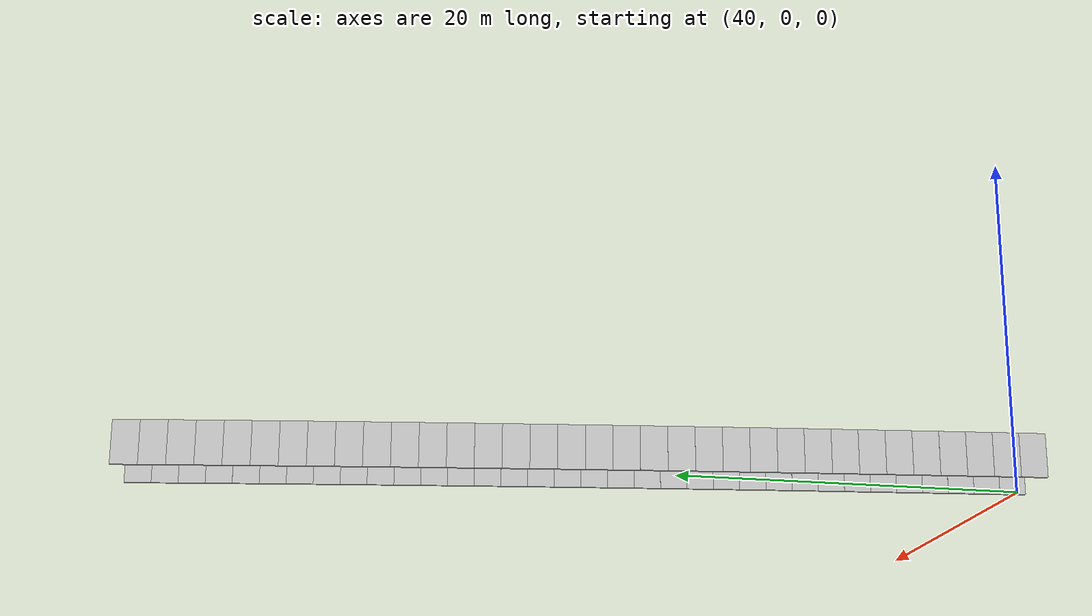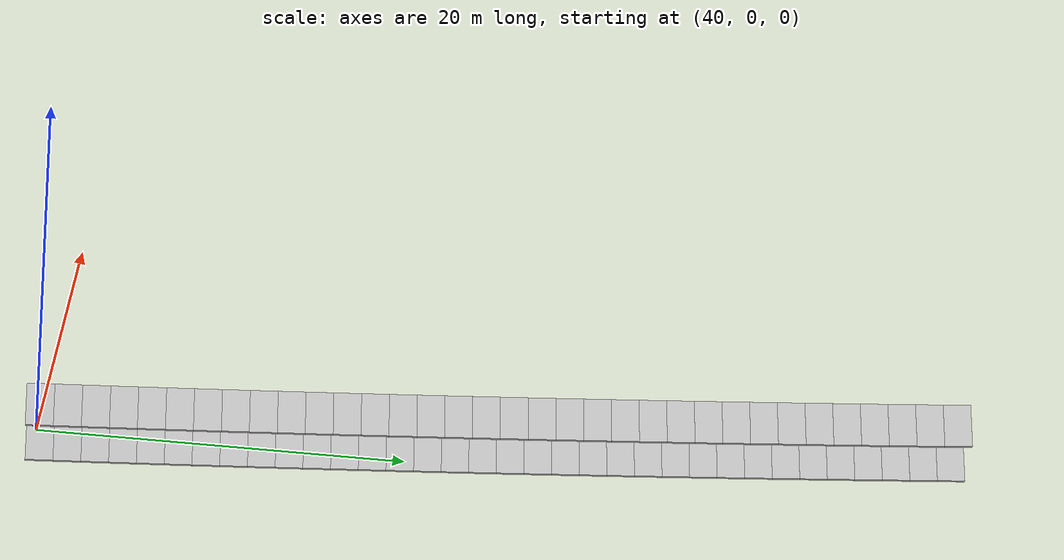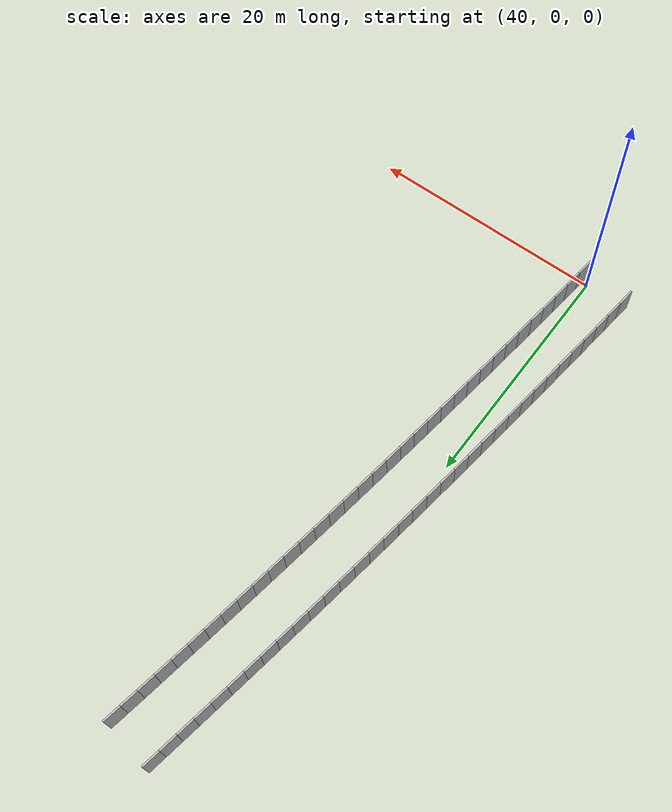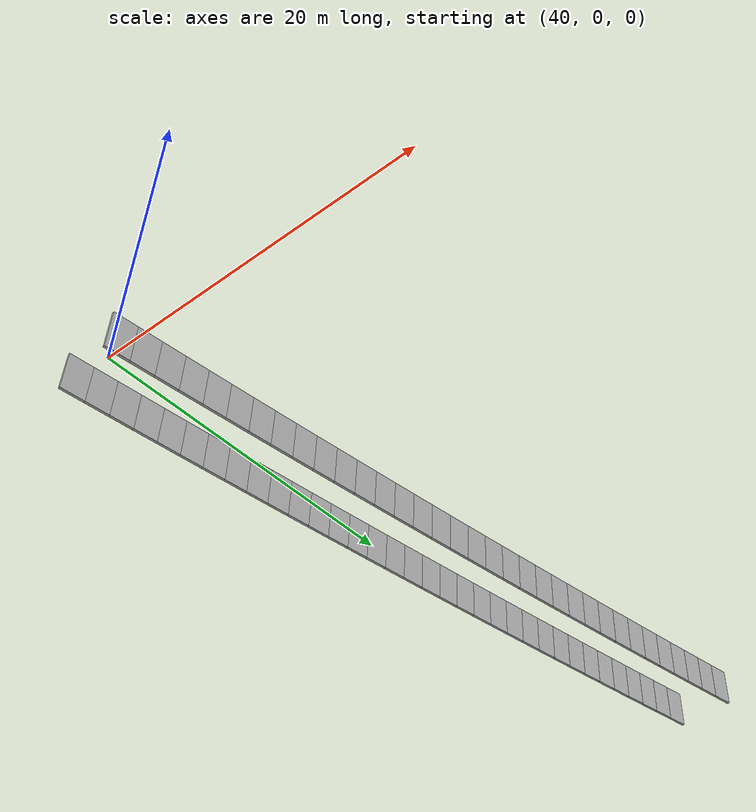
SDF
<?xml version="1.0" ?>
<sdf version="1.6">
  <model name="sps_0228">
    <pose frame="">0 0 0 0 -0 0</pose>
    <static>1</static>
    <self_collide>0</self_collide>
    <allow_auto_disable>0</allow_auto_disable>
    <link name="Wall5103">
      <kinematic>0</kinematic>
      <gravity>1</gravity>
      <self_collide>0</self_collide>
      <collision name="collision">
        <geometry>
          <box>
            <size>1.49657 0.15 2.5</size>
          </box>
        </geometry>
        <pose frame="">0 0 0 0 -0 0</pose>
      </collision>
      <visual name="visual">
        <geometry>
          <box>
            <size>1.49657 0.15 2.5</size>
          </box>
        </geometry>
        <pose frame="">0 0 0 0 -0 0</pose>
        <cast_shadows>1</cast_shadows>
        <transparency>0.0</transparency>
      </visual>
      <pose frame="">47.4253 48.9819 1.25 0 0 -1.73698</pose>
    </link>
    <link name="Wall5104">
      <kinematic>0</kinematic>
      <gravity>1</gravity>
      <self_collide>0</self_collide>
      <collision name="collision">
        <geometry>
          <box>
            <size>1.49643 0.15 2.5</size>
          </box>
        </geometry>
        <pose frame="">0 0 0 0 -0 0</pose>
      </collision>
      <visual name="visual">
        <geometry>
          <box>
            <size>1.49643 0.15 2.5</size>
          </box>
        </geometry>
        <pose frame="">0 0 0 0 -0 0</pose>
        <cast_shadows>1</cast_shadows>
        <transparency>0.0</transparency>
      </visual>
      <pose frame="">47.1789 47.5058 1.25 0 0 -1.73542</pose>
    </link>
    <link name="Wall5105">
      <kinematic>0</kinematic>
      <gravity>1</gravity>
      <self_collide>0</self_collide>
      <collision name="collision">
        <geometry>
          <box>
            <size>1.49645 0.15 2.5</size>
          </box>
        </geometry>
        <pose frame="">0 0 0 0 -0 0</pose>
      </collision>
      <visual name="visual">
        <geometry>
          <box>
            <size>1.49645 0.15 2.5</size>
          </box>
        </geometry>
        <pose frame="">0 0 0 0 -0 0</pose>
        <cast_shadows>1</cast_shadows>
        <transparency>0.0</transparency>
      </visual>
      <pose frame="">46.9348 46.0294 1.25 0 0 -1.73377</pose>
    </link>
    <link name="Wall5106">
      <kinematic>0</kinematic>
      <gravity>1</gravity>
      <self_collide>0</self_collide>
      <collision name="collision">
        <geometry>
          <box>
            <size>1.49664 0.15 2.5</size>
          </box>
        </geometry>
        <pose frame="">0 0 0 0 -0 0</pose>
      </collision>
      <visual name="visual">
        <geometry>
          <box>
            <size>1.49664 0.15 2.5</size>
          </box>
        </geometry>
        <pose frame="">0 0 0 0 -0 0</pose>
        <cast_shadows>1</cast_shadows>
        <transparency>0.0</transparency>
      </visual>
      <pose frame="">46.6931 44.5525 1.25 0 0 -1.73226</pose>
    </link>
    <link name="Wall5107">
      <kinematic>0</kinematic>
      <gravity>1</gravity>
      <self_collide>0</self_collide>
      <collision name="collision">
        <geometry>
          <box>
            <size>1.49649 0.15 2.5</size>
          </box>
        </geometry>
        <pose frame="">0 0 0 0 -0 0</pose>
      </collision>
      <visual name="visual">
        <geometry>
          <box>
            <size>1.49649 0.15 2.5</size>
          </box>
        </geometry>
        <pose frame="">0 0 0 0 -0 0</pose>
        <cast_shadows>1</cast_shadows>
        <transparency>0.0</transparency>
      </visual>
      <pose frame="">46.4538 43.0752 1.25 0 0 -1.73062</pose>
    </link>
    <link name="Wall5108">
      <kinematic>0</kinematic>
      <gravity>1</gravity>
      <self_collide>0</self_collide>
      <collision name="collision">
        <geometry>
          <box>
            <size>1.49651 0.15 2.5</size>
          </box>
        </geometry>
        <pose frame="">0 0 0 0 -0 0</pose>
      </collision>
      <visual name="visual">
        <geometry>
          <box>
            <size>1.49651 0.15 2.5</size>
          </box>
        </geometry>
        <pose frame="">0 0 0 0 -0 0</pose>
        <cast_shadows>1</cast_shadows>
        <transparency>0.0</transparency>
      </visual>
      <pose frame="">46.2167 41.5976 1.25 0 0 -1.72917</pose>
    </link>
    <link name="Wall5109">
      <kinematic>0</kinematic>
      <gravity>1</gravity>
      <self_collide>0</self_collide>
      <collision name="collision">
        <geometry>
          <box>
            <size>1.49652 0.15 2.5</size>
          </box>
        </geometry>
        <pose frame="">0 0 0 0 -0 0</pose>
      </collision>
      <visual name="visual">
        <geometry>
          <box>
            <size>1.49652 0.15 2.5</size>
          </box>
        </geometry>
        <pose frame="">0 0 0 0 -0 0</pose>
        <cast_shadows>1</cast_shadows>
        <transparency>0.0</transparency>
      </visual>
      <pose frame="">45.982 40.1196 1.25 0 0 -1.7274</pose>
    </link>
    <link name="Wall5110">
      <kinematic>0</kinematic>
      <gravity>1</gravity>
      <self_collide>0</self_collide>
      <collision name="collision">
        <geometry>
          <box>
            <size>1.4966 0.15 2.5</size>
          </box>
        </geometry>
        <pose frame="">0 0 0 0 -0 0</pose>
      </collision>
      <visual name="visual">
        <geometry>
          <box>
            <size>1.4966 0.15 2.5</size>
          </box>
        </geometry>
        <pose frame="">0 0 0 0 -0 0</pose>
        <cast_shadows>1</cast_shadows>
        <transparency>0.0</transparency>
      </visual>
      <pose frame="">45.7497 38.6412 1.25 0 0 -1.7259</pose>
    </link>
    <link name="Wall5111">
      <kinematic>0</kinematic>
      <gravity>1</gravity>
      <self_collide>0</self_collide>
      <collision name="collision">
        <geometry>
          <box>
            <size>1.49639 0.15 2.5</size>
          </box>
        </geometry>
        <pose frame="">0 0 0 0 -0 0</pose>
      </collision>
      <visual name="visual">
        <geometry>
          <box>
            <size>1.49639 0.15 2.5</size>
          </box>
        </geometry>
        <pose frame="">0 0 0 0 -0 0</pose>
        <cast_shadows>1</cast_shadows>
        <transparency>0.0</transparency>
      </visual>
      <pose frame="">45.5196 37.1625 1.25 0 0 -1.72444</pose>
    </link>
    <link name="Wall5112">
      <kinematic>0</kinematic>
      <gravity>1</gravity>
      <self_collide>0</self_collide>
      <collision name="collision">
        <geometry>
          <box>
            <size>1.49665 0.15 2.5</size>
          </box>
        </geometry>
        <pose frame="">0 0 0 0 -0 0</pose>
      </collision>
      <visual name="visual">
        <geometry>
          <box>
            <size>1.49665 0.15 2.5</size>
          </box>
        </geometry>
        <pose frame="">0 0 0 0 -0 0</pose>
        <cast_shadows>1</cast_shadows>
        <transparency>0.0</transparency>
      </visual>
      <pose frame="">45.2919 35.6834 1.25 0 0 -1.72264</pose>
    </link>
    <link name="Wall5113">
      <kinematic>0</kinematic>
      <gravity>1</gravity>
      <self_collide>0</self_collide>
      <collision name="collision">
        <geometry>
          <box>
            <size>1.49651 0.15 2.5</size>
          </box>
        </geometry>
        <pose frame="">0 0 0 0 -0 0</pose>
      </collision>
      <visual name="visual">
        <geometry>
          <box>
            <size>1.49651 0.15 2.5</size>
          </box>
        </geometry>
        <pose frame="">0 0 0 0 -0 0</pose>
        <cast_shadows>1</cast_shadows>
        <transparency>0.0</transparency>
      </visual>
      <pose frame="">45.0666 34.2039 1.25 0 0 -1.72121</pose>
    </link>
    <link name="Wall5114">
      <kinematic>0</kinematic>
      <gravity>1</gravity>
      <self_collide>0</self_collide>
      <collision name="collision">
        <geometry>
          <box>
            <size>1.49651 0.15 2.5</size>
          </box>
        </geometry>
        <pose frame="">0 0 0 0 -0 0</pose>
      </collision>
      <visual name="visual">
        <geometry>
          <box>
            <size>1.49651 0.15 2.5</size>
          </box>
        </geometry>
        <pose frame="">0 0 0 0 -0 0</pose>
        <cast_shadows>1</cast_shadows>
        <transparency>0.0</transparency>
      </visual>
      <pose frame="">44.8435 32.7241 1.25 0 0 -1.71956</pose>
    </link>
    <link name="Wall5115">
      <kinematic>0</kinematic>
      <gravity>1</gravity>
      <self_collide>0</self_collide>
      <collision name="collision">
        <geometry>
          <box>
            <size>1.49657 0.15 2.5</size>
          </box>
        </geometry>
        <pose frame="">0 0 0 0 -0 0</pose>
      </collision>
      <visual name="visual">
        <geometry>
          <box>
            <size>1.49657 0.15 2.5</size>
          </box>
        </geometry>
        <pose frame="">0 0 0 0 -0 0</pose>
        <cast_shadows>1</cast_shadows>
        <transparency>0.0</transparency>
      </visual>
      <pose frame="">44.6229 31.2439 1.25 0 0 -1.7179</pose>
    </link>
    <link name="Wall5116">
      <kinematic>0</kinematic>
      <gravity>1</gravity>
      <self_collide>0</self_collide>
      <collision name="collision">
        <geometry>
          <box>
            <size>1.49644 0.15 2.5</size>
          </box>
        </geometry>
        <pose frame="">0 0 0 0 -0 0</pose>
      </collision>
      <visual name="visual">
        <geometry>
          <box>
            <size>1.49644 0.15 2.5</size>
          </box>
        </geometry>
        <pose frame="">0 0 0 0 -0 0</pose>
        <cast_shadows>1</cast_shadows>
        <transparency>0.0</transparency>
      </visual>
      <pose frame="">44.4047 29.7634 1.25 0 0 -1.71647</pose>
    </link>
    <link name="Wall5117">
      <kinematic>0</kinematic>
      <gravity>1</gravity>
      <self_collide>0</self_collide>
      <collision name="collision">
        <geometry>
          <box>
            <size>1.49649 0.15 2.5</size>
          </box>
        </geometry>
        <pose frame="">0 0 0 0 -0 0</pose>
      </collision>
      <visual name="visual">
        <geometry>
          <box>
            <size>1.49649 0.15 2.5</size>
          </box>
        </geometry>
        <pose frame="">0 0 0 0 -0 0</pose>
        <cast_shadows>1</cast_shadows>
        <transparency>0.0</transparency>
      </visual>
      <pose frame="">44.1887 28.2826 1.25 0 0 -1.71469</pose>
    </link>
    <link name="Wall5118">
      <kinematic>0</kinematic>
      <gravity>1</gravity>
      <self_collide>0</self_collide>
      <collision name="collision">
        <geometry>
          <box>
            <size>1.49656 0.15 2.5</size>
          </box>
        </geometry>
        <pose frame="">0 0 0 0 -0 0</pose>
      </collision>
      <visual name="visual">
        <geometry>
          <box>
            <size>1.49656 0.15 2.5</size>
          </box>
        </geometry>
        <pose frame="">0 0 0 0 -0 0</pose>
        <cast_shadows>1</cast_shadows>
        <transparency>0.0</transparency>
      </visual>
      <pose frame="">43.9752 26.8014 1.25 0 0 -1.71333</pose>
    </link>
    <link name="Wall5119">
      <kinematic>0</kinematic>
      <gravity>1</gravity>
      <self_collide>0</self_collide>
      <collision name="collision">
        <geometry>
          <box>
            <size>1.49662 0.15 2.5</size>
          </box>
        </geometry>
        <pose frame="">0 0 0 0 -0 0</pose>
      </collision>
      <visual name="visual">
        <geometry>
          <box>
            <size>1.49662 0.15 2.5</size>
          </box>
        </geometry>
        <pose frame="">0 0 0 0 -0 0</pose>
        <cast_shadows>1</cast_shadows>
        <transparency>0.0</transparency>
      </visual>
      <pose frame="">43.7638 25.3198 1.25 0 0 -1.71159</pose>
    </link>
    <link name="Wall5120">
      <kinematic>0</kinematic>
      <gravity>1</gravity>
      <self_collide>0</self_collide>
      <collision name="collision">
        <geometry>
          <box>
            <size>1.49649 0.15 2.5</size>
          </box>
        </geometry>
        <pose frame="">0 0 0 0 -0 0</pose>
      </collision>
      <visual name="visual">
        <geometry>
          <box>
            <size>1.49649 0.15 2.5</size>
          </box>
        </geometry>
        <pose frame="">0 0 0 0 -0 0</pose>
        <cast_shadows>1</cast_shadows>
        <transparency>0.0</transparency>
      </visual>
      <pose frame="">43.555 23.8379 1.25 0 0 -1.71008</pose>
    </link>
    <link name="Wall5121">
      <kinematic>0</kinematic>
      <gravity>1</gravity>
      <self_collide>0</self_collide>
      <collision name="collision">
        <geometry>
          <box>
            <size>1.49631 0.15 2.5</size>
          </box>
        </geometry>
        <pose frame="">0 0 0 0 -0 0</pose>
      </collision>
      <visual name="visual">
        <geometry>
          <box>
            <size>1.49631 0.15 2.5</size>
          </box>
        </geometry>
        <pose frame="">0 0 0 0 -0 0</pose>
        <cast_shadows>1</cast_shadows>
        <transparency>0.0</transparency>
      </visual>
      <pose frame="">43.3485 22.3558 1.25 0 0 -1.70837</pose>
    </link>
    <link name="Wall5122">
      <kinematic>0</kinematic>
      <gravity>1</gravity>
      <self_collide>0</self_collide>
      <collision name="collision">
        <geometry>
          <box>
            <size>1.49686 0.15 2.5</size>
          </box>
        </geometry>
        <pose frame="">0 0 0 0 -0 0</pose>
      </collision>
      <visual name="visual">
        <geometry>
          <box>
            <size>1.49686 0.15 2.5</size>
          </box>
        </geometry>
        <pose frame="">0 0 0 0 -0 0</pose>
        <cast_shadows>1</cast_shadows>
        <transparency>0.0</transparency>
      </visual>
      <pose frame="">43.1444 20.8732 1.25 0 0 -1.70683</pose>
    </link>
    <link name="Wall5123">
      <kinematic>0</kinematic>
      <gravity>1</gravity>
      <self_collide>0</self_collide>
      <collision name="collision">
        <geometry>
          <box>
            <size>1.4965 0.15 2.5</size>
          </box>
        </geometry>
        <pose frame="">0 0 0 0 -0 0</pose>
      </collision>
      <visual name="visual">
        <geometry>
          <box>
            <size>1.4965 0.15 2.5</size>
          </box>
        </geometry>
        <pose frame="">0 0 0 0 -0 0</pose>
        <cast_shadows>1</cast_shadows>
        <transparency>0.0</transparency>
      </visual>
      <pose frame="">42.9425 19.3902 1.25 0 0 -1.70539</pose>
    </link>
    <link name="Wall5124">
      <kinematic>0</kinematic>
      <gravity>1</gravity>
      <self_collide>0</self_collide>
      <collision name="collision">
        <geometry>
          <box>
            <size>1.49643 0.15 2.5</size>
          </box>
        </geometry>
        <pose frame="">0 0 0 0 -0 0</pose>
      </collision>
      <visual name="visual">
        <geometry>
          <box>
            <size>1.49643 0.15 2.5</size>
          </box>
        </geometry>
        <pose frame="">0 0 0 0 -0 0</pose>
        <cast_shadows>1</cast_shadows>
        <transparency>0.0</transparency>
      </visual>
      <pose frame="">42.7429 17.9071 1.25 0 0 -1.70379</pose>
    </link>
    <link name="Wall5125">
      <kinematic>0</kinematic>
      <gravity>1</gravity>
      <self_collide>0</self_collide>
      <collision name="collision">
        <geometry>
          <box>
            <size>1.49663 0.15 2.5</size>
          </box>
        </geometry>
        <pose frame="">0 0 0 0 -0 0</pose>
      </collision>
      <visual name="visual">
        <geometry>
          <box>
            <size>1.49663 0.15 2.5</size>
          </box>
        </geometry>
        <pose frame="">0 0 0 0 -0 0</pose>
        <cast_shadows>1</cast_shadows>
        <transparency>0.0</transparency>
      </visual>
      <pose frame="">42.5457 16.4236 1.25 0 0 -1.702</pose>
    </link>
    <link name="Wall5126">
      <kinematic>0</kinematic>
      <gravity>1</gravity>
      <self_collide>0</self_collide>
      <collision name="collision">
        <geometry>
          <box>
            <size>1.49661 0.15 2.5</size>
          </box>
        </geometry>
        <pose frame="">0 0 0 0 -0 0</pose>
      </collision>
      <visual name="visual">
        <geometry>
          <box>
            <size>1.49661 0.15 2.5</size>
          </box>
        </geometry>
        <pose frame="">0 0 0 0 -0 0</pose>
        <cast_shadows>1</cast_shadows>
        <transparency>0.0</transparency>
      </visual>
      <pose frame="">42.3509 14.9397 1.25 0 0 -1.70064</pose>
    </link>
    <link name="Wall5127">
      <kinematic>0</kinematic>
      <gravity>1</gravity>
      <self_collide>0</self_collide>
      <collision name="collision">
        <geometry>
          <box>
            <size>1.49646 0.15 2.5</size>
          </box>
        </geometry>
        <pose frame="">0 0 0 0 -0 0</pose>
      </collision>
      <visual name="visual">
        <geometry>
          <box>
            <size>1.49646 0.15 2.5</size>
          </box>
        </geometry>
        <pose frame="">0 0 0 0 -0 0</pose>
        <cast_shadows>1</cast_shadows>
        <transparency>0.0</transparency>
      </visual>
      <pose frame="">42.1584 13.4556 1.25 0 0 -1.69893</pose>
    </link>
    <link name="Wall5128">
      <kinematic>0</kinematic>
      <gravity>1</gravity>
      <self_collide>0</self_collide>
      <collision name="collision">
        <geometry>
          <box>
            <size>1.49642 0.15 2.5</size>
          </box>
        </geometry>
        <pose frame="">0 0 0 0 -0 0</pose>
      </collision>
      <visual name="visual">
        <geometry>
          <box>
            <size>1.49642 0.15 2.5</size>
          </box>
        </geometry>
        <pose frame="">0 0 0 0 -0 0</pose>
        <cast_shadows>1</cast_shadows>
        <transparency>0.0</transparency>
      </visual>
      <pose frame="">41.9683 11.9713 1.25 0 0 -1.69741</pose>
    </link>
    <link name="Wall5129">
      <kinematic>0</kinematic>
      <gravity>1</gravity>
      <self_collide>0</self_collide>
      <collision name="collision">
        <geometry>
          <box>
            <size>1.49648 0.15 2.5</size>
          </box>
        </geometry>
        <pose frame="">0 0 0 0 -0 0</pose>
      </collision>
      <visual name="visual">
        <geometry>
          <box>
            <size>1.49648 0.15 2.5</size>
          </box>
        </geometry>
        <pose frame="">0 0 0 0 -0 0</pose>
        <cast_shadows>1</cast_shadows>
        <transparency>0.0</transparency>
      </visual>
      <pose frame="">41.7806 10.4867 1.25 0 0 -1.6958</pose>
    </link>
    <link name="Wall5130">
      <kinematic>0</kinematic>
      <gravity>1</gravity>
      <self_collide>0</self_collide>
      <collision name="collision">
        <geometry>
          <box>
            <size>1.49655 0.15 2.5</size>
          </box>
        </geometry>
        <pose frame="">0 0 0 0 -0 0</pose>
      </collision>
      <visual name="visual">
        <geometry>
          <box>
            <size>1.49655 0.15 2.5</size>
          </box>
        </geometry>
        <pose frame="">0 0 0 0 -0 0</pose>
        <cast_shadows>1</cast_shadows>
        <transparency>0.0</transparency>
      </visual>
      <pose frame="">41.5952 9.00169 1.25 0 0 -1.6942</pose>
    </link>
    <link name="Wall5131">
      <kinematic>0</kinematic>
      <gravity>1</gravity>
      <self_collide>0</self_collide>
      <collision name="collision">
        <geometry>
          <box>
            <size>1.4965 0.15 2.5</size>
          </box>
        </geometry>
        <pose frame="">0 0 0 0 -0 0</pose>
      </collision>
      <visual name="visual">
        <geometry>
          <box>
            <size>1.4965 0.15 2.5</size>
          </box>
        </geometry>
        <pose frame="">0 0 0 0 -0 0</pose>
        <cast_shadows>1</cast_shadows>
        <transparency>0.0</transparency>
      </visual>
      <pose frame="">41.4122 7.5164 1.25 0 0 -1.6926</pose>
    </link>
    <link name="Wall5132">
      <kinematic>0</kinematic>
      <gravity>1</gravity>
      <self_collide>0</self_collide>
      <collision name="collision">
        <geometry>
          <box>
            <size>1.49659 0.15 2.5</size>
          </box>
        </geometry>
        <pose frame="">0 0 0 0 -0 0</pose>
      </collision>
      <visual name="visual">
        <geometry>
          <box>
            <size>1.49659 0.15 2.5</size>
          </box>
        </geometry>
        <pose frame="">0 0 0 0 -0 0</pose>
        <cast_shadows>1</cast_shadows>
        <transparency>0.0</transparency>
      </visual>
      <pose frame="">41.2315 6.03081 1.25 0 0 -1.69107</pose>
    </link>
    <link name="Wall5133">
      <kinematic>0</kinematic>
      <gravity>1</gravity>
      <self_collide>0</self_collide>
      <collision name="collision">
        <geometry>
          <box>
            <size>1.49653 0.15 2.5</size>
          </box>
        </geometry>
        <pose frame="">0 0 0 0 -0 0</pose>
      </collision>
      <visual name="visual">
        <geometry>
          <box>
            <size>1.49653 0.15 2.5</size>
          </box>
        </geometry>
        <pose frame="">0 0 0 0 -0 0</pose>
        <cast_shadows>1</cast_shadows>
        <transparency>0.0</transparency>
      </visual>
      <pose frame="">41.0532 4.54491 1.25 0 0 -1.68935</pose>
    </link>
    <link name="Wall5134">
      <kinematic>0</kinematic>
      <gravity>1</gravity>
      <self_collide>0</self_collide>
      <collision name="collision">
        <geometry>
          <box>
            <size>1.49645 0.15 2.5</size>
          </box>
        </geometry>
        <pose frame="">0 0 0 0 -0 0</pose>
      </collision>
      <visual name="visual">
        <geometry>
          <box>
            <size>1.49645 0.15 2.5</size>
          </box>
        </geometry>
        <pose frame="">0 0 0 0 -0 0</pose>
        <cast_shadows>1</cast_shadows>
        <transparency>0.0</transparency>
      </visual>
      <pose frame="">40.8773 3.05879 1.25 0 0 -1.68788</pose>
    </link>
    <link name="Wall5135">
      <kinematic>0</kinematic>
      <gravity>1</gravity>
      <self_collide>0</self_collide>
      <collision name="collision">
        <geometry>
          <box>
            <size>1.49656 0.15 2.5</size>
          </box>
        </geometry>
        <pose frame="">0 0 0 0 -0 0</pose>
      </collision>
      <visual name="visual">
        <geometry>
          <box>
            <size>1.49656 0.15 2.5</size>
          </box>
        </geometry>
        <pose frame="">0 0 0 0 -0 0</pose>
        <cast_shadows>1</cast_shadows>
        <transparency>0.0</transparency>
      </visual>
      <pose frame="">40.7036 1.5724 1.25 0 0 -1.68639</pose>
    </link>
    <link name="Wall5136">
      <kinematic>0</kinematic>
      <gravity>1</gravity>
      <self_collide>0</self_collide>
      <collision name="collision">
        <geometry>
          <box>
            <size>1.49651 0.15 2.5</size>
          </box>
        </geometry>
        <pose frame="">0 0 0 0 -0 0</pose>
      </collision>
      <visual name="visual">
        <geometry>
          <box>
            <size>1.49651 0.15 2.5</size>
          </box>
        </geometry>
        <pose frame="">0 0 0 0 -0 0</pose>
        <cast_shadows>1</cast_shadows>
        <transparency>0.0</transparency>
      </visual>
      <pose frame="">40.5322 0.0857076 1.25 0 0 -1.68467</pose>
    </link>
    <link name="Wall6899">
      <kinematic>0</kinematic>
      <gravity>1</gravity>
      <self_collide>0</self_collide>
      <collision name="collision">
        <geometry>
          <box>
            <size>1.50315 0.15 2.5</size>
          </box>
        </geometry>
        <pose frame="">0 0 0 0 -0 0</pose>
      </collision>
      <visual name="visual">
        <geometry>
          <box>
            <size>1.50315 0.15 2.5</size>
          </box>
        </geometry>
        <pose frame="">0 0 0 0 -0 0</pose>
        <cast_shadows>1</cast_shadows>
        <transparency>0.0</transparency>
      </visual>
      <pose frame="">43.3429 49.6667 1.25 0 0 -1.73707</pose>
    </link>
    <link name="Wall6900">
      <kinematic>0</kinematic>
      <gravity>1</gravity>
      <self_collide>0</self_collide>
      <collision name="collision">
        <geometry>
          <box>
            <size>1.50291 0.15 2.5</size>
          </box>
        </geometry>
        <pose frame="">0 0 0 0 -0 0</pose>
      </collision>
      <visual name="visual">
        <geometry>
          <box>
            <size>1.50291 0.15 2.5</size>
          </box>
        </geometry>
        <pose frame="">0 0 0 0 -0 0</pose>
        <cast_shadows>1</cast_shadows>
        <transparency>0.0</transparency>
      </visual>
      <pose frame="">43.0954 48.1842 1.25 0 0 -1.73536</pose>
    </link>
    <link name="Wall6901">
      <kinematic>0</kinematic>
      <gravity>1</gravity>
      <self_collide>0</self_collide>
      <collision name="collision">
        <geometry>
          <box>
            <size>1.50315 0.15 2.5</size>
          </box>
        </geometry>
        <pose frame="">0 0 0 0 -0 0</pose>
      </collision>
      <visual name="visual">
        <geometry>
          <box>
            <size>1.50315 0.15 2.5</size>
          </box>
        </geometry>
        <pose frame="">0 0 0 0 -0 0</pose>
        <cast_shadows>1</cast_shadows>
        <transparency>0.0</transparency>
      </visual>
      <pose frame="">42.8502 46.7013 1.25 0 0 -1.73386</pose>
    </link>
    <link name="Wall6902">
      <kinematic>0</kinematic>
      <gravity>1</gravity>
      <self_collide>0</self_collide>
      <collision name="collision">
        <geometry>
          <box>
            <size>1.50312 0.15 2.5</size>
          </box>
        </geometry>
        <pose frame="">0 0 0 0 -0 0</pose>
      </collision>
      <visual name="visual">
        <geometry>
          <box>
            <size>1.50312 0.15 2.5</size>
          </box>
        </geometry>
        <pose frame="">0 0 0 0 -0 0</pose>
        <cast_shadows>1</cast_shadows>
        <transparency>0.0</transparency>
      </visual>
      <pose frame="">42.6074 45.2179 1.25 0 0 -1.73221</pose>
    </link>
    <link name="Wall6903">
      <kinematic>0</kinematic>
      <gravity>1</gravity>
      <self_collide>0</self_collide>
      <collision name="collision">
        <geometry>
          <box>
            <size>1.50316 0.15 2.5</size>
          </box>
        </geometry>
        <pose frame="">0 0 0 0 -0 0</pose>
      </collision>
      <visual name="visual">
        <geometry>
          <box>
            <size>1.50316 0.15 2.5</size>
          </box>
        </geometry>
        <pose frame="">0 0 0 0 -0 0</pose>
        <cast_shadows>1</cast_shadows>
        <transparency>0.0</transparency>
      </visual>
      <pose frame="">42.3671 43.7341 1.25 0 0 -1.7306</pose>
    </link>
    <link name="Wall6904">
      <kinematic>0</kinematic>
      <gravity>1</gravity>
      <self_collide>0</self_collide>
      <collision name="collision">
        <geometry>
          <box>
            <size>1.50297 0.15 2.5</size>
          </box>
        </geometry>
        <pose frame="">0 0 0 0 -0 0</pose>
      </collision>
      <visual name="visual">
        <geometry>
          <box>
            <size>1.50297 0.15 2.5</size>
          </box>
        </geometry>
        <pose frame="">0 0 0 0 -0 0</pose>
        <cast_shadows>1</cast_shadows>
        <transparency>0.0</transparency>
      </visual>
      <pose frame="">42.1291 42.25 1.25 0 0 -1.72902</pose>
    </link>
    <link name="Wall6905">
      <kinematic>0</kinematic>
      <gravity>1</gravity>
      <self_collide>0</self_collide>
      <collision name="collision">
        <geometry>
          <box>
            <size>1.50321 0.15 2.5</size>
          </box>
        </geometry>
        <pose frame="">0 0 0 0 -0 0</pose>
      </collision>
      <visual name="visual">
        <geometry>
          <box>
            <size>1.50321 0.15 2.5</size>
          </box>
        </geometry>
        <pose frame="">0 0 0 0 -0 0</pose>
        <cast_shadows>1</cast_shadows>
        <transparency>0.0</transparency>
      </visual>
      <pose frame="">41.8934 40.7655 1.25 0 0 -1.72747</pose>
    </link>
    <link name="Wall6906">
      <kinematic>0</kinematic>
      <gravity>1</gravity>
      <self_collide>0</self_collide>
      <collision name="collision">
        <geometry>
          <box>
            <size>1.50304 0.15 2.5</size>
          </box>
        </geometry>
        <pose frame="">0 0 0 0 -0 0</pose>
      </collision>
      <visual name="visual">
        <geometry>
          <box>
            <size>1.50304 0.15 2.5</size>
          </box>
        </geometry>
        <pose frame="">0 0 0 0 -0 0</pose>
        <cast_shadows>1</cast_shadows>
        <transparency>0.0</transparency>
      </visual>
      <pose frame="">41.66 39.2806 1.25 0 0 -1.72593</pose>
    </link>
    <link name="Wall6907">
      <kinematic>0</kinematic>
      <gravity>1</gravity>
      <self_collide>0</self_collide>
      <collision name="collision">
        <geometry>
          <box>
            <size>1.50308 0.15 2.5</size>
          </box>
        </geometry>
        <pose frame="">0 0 0 0 -0 0</pose>
      </collision>
      <visual name="visual">
        <geometry>
          <box>
            <size>1.50308 0.15 2.5</size>
          </box>
        </geometry>
        <pose frame="">0 0 0 0 -0 0</pose>
        <cast_shadows>1</cast_shadows>
        <transparency>0.0</transparency>
      </visual>
      <pose frame="">41.4289 37.7954 1.25 0 0 -1.72428</pose>
    </link>
    <link name="Wall6908">
      <kinematic>0</kinematic>
      <gravity>1</gravity>
      <self_collide>0</self_collide>
      <collision name="collision">
        <geometry>
          <box>
            <size>1.50293 0.15 2.5</size>
          </box>
        </geometry>
        <pose frame="">0 0 0 0 -0 0</pose>
      </collision>
      <visual name="visual">
        <geometry>
          <box>
            <size>1.50293 0.15 2.5</size>
          </box>
        </geometry>
        <pose frame="">0 0 0 0 -0 0</pose>
        <cast_shadows>1</cast_shadows>
        <transparency>0.0</transparency>
      </visual>
      <pose frame="">41.2002 36.3099 1.25 0 0 -1.72282</pose>
    </link>
    <link name="Wall6909">
      <kinematic>0</kinematic>
      <gravity>1</gravity>
      <self_collide>0</self_collide>
      <collision name="collision">
        <geometry>
          <box>
            <size>1.50314 0.15 2.5</size>
          </box>
        </geometry>
        <pose frame="">0 0 0 0 -0 0</pose>
      </collision>
      <visual name="visual">
        <geometry>
          <box>
            <size>1.50314 0.15 2.5</size>
          </box>
        </geometry>
        <pose frame="">0 0 0 0 -0 0</pose>
        <cast_shadows>1</cast_shadows>
        <transparency>0.0</transparency>
      </visual>
      <pose frame="">40.974 34.824 1.25 0 0 -1.72103</pose>
    </link>
    <link name="Wall6910">
      <kinematic>0</kinematic>
      <gravity>1</gravity>
      <self_collide>0</self_collide>
      <collision name="collision">
        <geometry>
          <box>
            <size>1.503 0.15 2.5</size>
          </box>
        </geometry>
        <pose frame="">0 0 0 0 -0 0</pose>
      </collision>
      <visual name="visual">
        <geometry>
          <box>
            <size>1.503 0.15 2.5</size>
          </box>
        </geometry>
        <pose frame="">0 0 0 0 -0 0</pose>
        <cast_shadows>1</cast_shadows>
        <transparency>0.0</transparency>
      </visual>
      <pose frame="">40.7501 33.3377 1.25 0 0 -1.71961</pose>
    </link>
    <link name="Wall6911">
      <kinematic>0</kinematic>
      <gravity>1</gravity>
      <self_collide>0</self_collide>
      <collision name="collision">
        <geometry>
          <box>
            <size>1.50306 0.15 2.5</size>
          </box>
        </geometry>
        <pose frame="">0 0 0 0 -0 0</pose>
      </collision>
      <visual name="visual">
        <geometry>
          <box>
            <size>1.50306 0.15 2.5</size>
          </box>
        </geometry>
        <pose frame="">0 0 0 0 -0 0</pose>
        <cast_shadows>1</cast_shadows>
        <transparency>0.0</transparency>
      </visual>
      <pose frame="">40.5284 31.8511 1.25 0 0 -1.71796</pose>
    </link>
    <link name="Wall6912">
      <kinematic>0</kinematic>
      <gravity>1</gravity>
      <self_collide>0</self_collide>
      <collision name="collision">
        <geometry>
          <box>
            <size>1.50307 0.15 2.5</size>
          </box>
        </geometry>
        <pose frame="">0 0 0 0 -0 0</pose>
      </collision>
      <visual name="visual">
        <geometry>
          <box>
            <size>1.50307 0.15 2.5</size>
          </box>
        </geometry>
        <pose frame="">0 0 0 0 -0 0</pose>
        <cast_shadows>1</cast_shadows>
        <transparency>0.0</transparency>
      </visual>
      <pose frame="">40.3093 30.3641 1.25 0 0 -1.71632</pose>
    </link>
    <link name="Wall6913">
      <kinematic>0</kinematic>
      <gravity>1</gravity>
      <self_collide>0</self_collide>
      <collision name="collision">
        <geometry>
          <box>
            <size>1.50318 0.15 2.5</size>
          </box>
        </geometry>
        <pose frame="">0 0 0 0 -0 0</pose>
      </collision>
      <visual name="visual">
        <geometry>
          <box>
            <size>1.50318 0.15 2.5</size>
          </box>
        </geometry>
        <pose frame="">0 0 0 0 -0 0</pose>
        <cast_shadows>1</cast_shadows>
        <transparency>0.0</transparency>
      </visual>
      <pose frame="">40.0924 28.8767 1.25 0 0 -1.71487</pose>
    </link>
    <link name="Wall6914">
      <kinematic>0</kinematic>
      <gravity>1</gravity>
      <self_collide>0</self_collide>
      <collision name="collision">
        <geometry>
          <box>
            <size>1.50302 0.15 2.5</size>
          </box>
        </geometry>
        <pose frame="">0 0 0 0 -0 0</pose>
      </collision>
      <visual name="visual">
        <geometry>
          <box>
            <size>1.50302 0.15 2.5</size>
          </box>
        </geometry>
        <pose frame="">0 0 0 0 -0 0</pose>
        <cast_shadows>1</cast_shadows>
        <transparency>0.0</transparency>
      </visual>
      <pose frame="">39.8778 27.389 1.25 0 0 -1.71324</pose>
    </link>
    <link name="Wall6915">
      <kinematic>0</kinematic>
      <gravity>1</gravity>
      <self_collide>0</self_collide>
      <collision name="collision">
        <geometry>
          <box>
            <size>1.5031 0.15 2.5</size>
          </box>
        </geometry>
        <pose frame="">0 0 0 0 -0 0</pose>
      </collision>
      <visual name="visual">
        <geometry>
          <box>
            <size>1.5031 0.15 2.5</size>
          </box>
        </geometry>
        <pose frame="">0 0 0 0 -0 0</pose>
        <cast_shadows>1</cast_shadows>
        <transparency>0.0</transparency>
      </visual>
      <pose frame="">39.6656 25.901 1.25 0 0 -1.71164</pose>
    </link>
    <link name="Wall6916">
      <kinematic>0</kinematic>
      <gravity>1</gravity>
      <self_collide>0</self_collide>
      <collision name="collision">
        <geometry>
          <box>
            <size>1.50313 0.15 2.5</size>
          </box>
        </geometry>
        <pose frame="">0 0 0 0 -0 0</pose>
      </collision>
      <visual name="visual">
        <geometry>
          <box>
            <size>1.50313 0.15 2.5</size>
          </box>
        </geometry>
        <pose frame="">0 0 0 0 -0 0</pose>
        <cast_shadows>1</cast_shadows>
        <transparency>0.0</transparency>
      </visual>
      <pose frame="">39.4558 24.4126 1.25 0 0 -1.71003</pose>
    </link>
    <link name="Wall6917">
      <kinematic>0</kinematic>
      <gravity>1</gravity>
      <self_collide>0</self_collide>
      <collision name="collision">
        <geometry>
          <box>
            <size>1.50322 0.15 2.5</size>
          </box>
        </geometry>
        <pose frame="">0 0 0 0 -0 0</pose>
      </collision>
      <visual name="visual">
        <geometry>
          <box>
            <size>1.50322 0.15 2.5</size>
          </box>
        </geometry>
        <pose frame="">0 0 0 0 -0 0</pose>
        <cast_shadows>1</cast_shadows>
        <transparency>0.0</transparency>
      </visual>
      <pose frame="">39.2484 22.9238 1.25 0 0 -1.70839</pose>
    </link>
    <link name="Wall6918">
      <kinematic>0</kinematic>
      <gravity>1</gravity>
      <self_collide>0</self_collide>
      <collision name="collision">
        <geometry>
          <box>
            <size>1.50311 0.15 2.5</size>
          </box>
        </geometry>
        <pose frame="">0 0 0 0 -0 0</pose>
      </collision>
      <visual name="visual">
        <geometry>
          <box>
            <size>1.50311 0.15 2.5</size>
          </box>
        </geometry>
        <pose frame="">0 0 0 0 -0 0</pose>
        <cast_shadows>1</cast_shadows>
        <transparency>0.0</transparency>
      </visual>
      <pose frame="">39.0433 21.4347 1.25 0 0 -1.70696</pose>
    </link>
    <link name="Wall6919">
      <kinematic>0</kinematic>
      <gravity>1</gravity>
      <self_collide>0</self_collide>
      <collision name="collision">
        <geometry>
          <box>
            <size>1.50312 0.15 2.5</size>
          </box>
        </geometry>
        <pose frame="">0 0 0 0 -0 0</pose>
      </collision>
      <visual name="visual">
        <geometry>
          <box>
            <size>1.50312 0.15 2.5</size>
          </box>
        </geometry>
        <pose frame="">0 0 0 0 -0 0</pose>
        <cast_shadows>1</cast_shadows>
        <transparency>0.0</transparency>
      </visual>
      <pose frame="">38.8405 19.9453 1.25 0 0 -1.7052</pose>
    </link>
    <link name="Wall6920">
      <kinematic>0</kinematic>
      <gravity>1</gravity>
      <self_collide>0</self_collide>
      <collision name="collision">
        <geometry>
          <box>
            <size>1.50291 0.15 2.5</size>
          </box>
        </geometry>
        <pose frame="">0 0 0 0 -0 0</pose>
      </collision>
      <visual name="visual">
        <geometry>
          <box>
            <size>1.50291 0.15 2.5</size>
          </box>
        </geometry>
        <pose frame="">0 0 0 0 -0 0</pose>
        <cast_shadows>1</cast_shadows>
        <transparency>0.0</transparency>
      </visual>
      <pose frame="">38.6401 18.4557 1.25 0 0 -1.70387</pose>
    </link>
    <link name="Wall6921">
      <kinematic>0</kinematic>
      <gravity>1</gravity>
      <self_collide>0</self_collide>
      <collision name="collision">
        <geometry>
          <box>
            <size>1.50311 0.15 2.5</size>
          </box>
        </geometry>
        <pose frame="">0 0 0 0 -0 0</pose>
      </collision>
      <visual name="visual">
        <geometry>
          <box>
            <size>1.50311 0.15 2.5</size>
          </box>
        </geometry>
        <pose frame="">0 0 0 0 -0 0</pose>
        <cast_shadows>1</cast_shadows>
        <transparency>0.0</transparency>
      </visual>
      <pose frame="">38.442 16.9658 1.25 0 0 -1.70209</pose>
    </link>
    <link name="Wall6922">
      <kinematic>0</kinematic>
      <gravity>1</gravity>
      <self_collide>0</self_collide>
      <collision name="collision">
        <geometry>
          <box>
            <size>1.50322 0.15 2.5</size>
          </box>
        </geometry>
        <pose frame="">0 0 0 0 -0 0</pose>
      </collision>
      <visual name="visual">
        <geometry>
          <box>
            <size>1.50322 0.15 2.5</size>
          </box>
        </geometry>
        <pose frame="">0 0 0 0 -0 0</pose>
        <cast_shadows>1</cast_shadows>
        <transparency>0.0</transparency>
      </visual>
      <pose frame="">38.2465 15.4754 1.25 0 0 -1.70048</pose>
    </link>
    <link name="Wall6923">
      <kinematic>0</kinematic>
      <gravity>1</gravity>
      <self_collide>0</self_collide>
      <collision name="collision">
        <geometry>
          <box>
            <size>1.50316 0.15 2.5</size>
          </box>
        </geometry>
        <pose frame="">0 0 0 0 -0 0</pose>
      </collision>
      <visual name="visual">
        <geometry>
          <box>
            <size>1.50316 0.15 2.5</size>
          </box>
        </geometry>
        <pose frame="">0 0 0 0 -0 0</pose>
        <cast_shadows>1</cast_shadows>
        <transparency>0.0</transparency>
      </visual>
      <pose frame="">38.0532 13.9847 1.25 0 0 -1.69889</pose>
    </link>
    <link name="Wall6924">
      <kinematic>0</kinematic>
      <gravity>1</gravity>
      <self_collide>0</self_collide>
      <collision name="collision">
        <geometry>
          <box>
            <size>1.50299 0.15 2.5</size>
          </box>
        </geometry>
        <pose frame="">0 0 0 0 -0 0</pose>
      </collision>
      <visual name="visual">
        <geometry>
          <box>
            <size>1.50299 0.15 2.5</size>
          </box>
        </geometry>
        <pose frame="">0 0 0 0 -0 0</pose>
        <cast_shadows>1</cast_shadows>
        <transparency>0.0</transparency>
      </visual>
      <pose frame="">37.8624 12.4938 1.25 0 0 -1.69739</pose>
    </link>
    <link name="Wall6925">
      <kinematic>0</kinematic>
      <gravity>1</gravity>
      <self_collide>0</self_collide>
      <collision name="collision">
        <geometry>
          <box>
            <size>1.50313 0.15 2.5</size>
          </box>
        </geometry>
        <pose frame="">0 0 0 0 -0 0</pose>
      </collision>
      <visual name="visual">
        <geometry>
          <box>
            <size>1.50313 0.15 2.5</size>
          </box>
        </geometry>
        <pose frame="">0 0 0 0 -0 0</pose>
        <cast_shadows>1</cast_shadows>
        <transparency>0.0</transparency>
      </visual>
      <pose frame="">37.6738 11.0026 1.25 0 0 -1.69582</pose>
    </link>
    <link name="Wall6926">
      <kinematic>0</kinematic>
      <gravity>1</gravity>
      <self_collide>0</self_collide>
      <collision name="collision">
        <geometry>
          <box>
            <size>1.50309 0.15 2.5</size>
          </box>
        </geometry>
        <pose frame="">0 0 0 0 -0 0</pose>
      </collision>
      <visual name="visual">
        <geometry>
          <box>
            <size>1.50309 0.15 2.5</size>
          </box>
        </geometry>
        <pose frame="">0 0 0 0 -0 0</pose>
        <cast_shadows>1</cast_shadows>
        <transparency>0.0</transparency>
      </visual>
      <pose frame="">37.4874 9.51109 1.25 0 0 -1.69431</pose>
    </link>
    <link name="Wall6927">
      <kinematic>0</kinematic>
      <gravity>1</gravity>
      <self_collide>0</self_collide>
      <collision name="collision">
        <geometry>
          <box>
            <size>1.50314 0.15 2.5</size>
          </box>
        </geometry>
        <pose frame="">0 0 0 0 -0 0</pose>
      </collision>
      <visual name="visual">
        <geometry>
          <box>
            <size>1.50314 0.15 2.5</size>
          </box>
        </geometry>
        <pose frame="">0 0 0 0 -0 0</pose>
        <cast_shadows>1</cast_shadows>
        <transparency>0.0</transparency>
      </visual>
      <pose frame="">37.3036 8.01927 1.25 0 0 -1.69259</pose>
    </link>
    <link name="Wall6928">
      <kinematic>0</kinematic>
      <gravity>1</gravity>
      <self_collide>0</self_collide>
      <collision name="collision">
        <geometry>
          <box>
            <size>1.50305 0.15 2.5</size>
          </box>
        </geometry>
        <pose frame="">0 0 0 0 -0 0</pose>
      </collision>
      <visual name="visual">
        <geometry>
          <box>
            <size>1.50305 0.15 2.5</size>
          </box>
        </geometry>
        <pose frame="">0 0 0 0 -0 0</pose>
        <cast_shadows>1</cast_shadows>
        <transparency>0.0</transparency>
      </visual>
      <pose frame="">37.1221 6.52717 1.25 0 0 -1.69108</pose>
    </link>
    <link name="Wall6929">
      <kinematic>0</kinematic>
      <gravity>1</gravity>
      <self_collide>0</self_collide>
      <collision name="collision">
        <geometry>
          <box>
            <size>1.50293 0.15 2.5</size>
          </box>
        </geometry>
        <pose frame="">0 0 0 0 -0 0</pose>
      </collision>
      <visual name="visual">
        <geometry>
          <box>
            <size>1.50293 0.15 2.5</size>
          </box>
        </geometry>
        <pose frame="">0 0 0 0 -0 0</pose>
        <cast_shadows>1</cast_shadows>
        <transparency>0.0</transparency>
      </visual>
      <pose frame="">36.943 5.0349 1.25 0 0 -1.68941</pose>
    </link>
    <link name="Wall6930">
      <kinematic>0</kinematic>
      <gravity>1</gravity>
      <self_collide>0</self_collide>
      <collision name="collision">
        <geometry>
          <box>
            <size>1.50309 0.15 2.5</size>
          </box>
        </geometry>
        <pose frame="">0 0 0 0 -0 0</pose>
      </collision>
      <visual name="visual">
        <geometry>
          <box>
            <size>1.50309 0.15 2.5</size>
          </box>
        </geometry>
        <pose frame="">0 0 0 0 -0 0</pose>
        <cast_shadows>1</cast_shadows>
        <transparency>0.0</transparency>
      </visual>
      <pose frame="">36.7662 3.54231 1.25 0 0 -1.68789</pose>
    </link>
    <link name="Wall6931">
      <kinematic>0</kinematic>
      <gravity>1</gravity>
      <self_collide>0</self_collide>
      <collision name="collision">
        <geometry>
          <box>
            <size>1.50305 0.15 2.5</size>
          </box>
        </geometry>
        <pose frame="">0 0 0 0 -0 0</pose>
      </collision>
      <visual name="visual">
        <geometry>
          <box>
            <size>1.50305 0.15 2.5</size>
          </box>
        </geometry>
        <pose frame="">0 0 0 0 -0 0</pose>
        <cast_shadows>1</cast_shadows>
        <transparency>0.0</transparency>
      </visual>
      <pose frame="">36.5918 2.04939 1.25 0 0 -1.68626</pose>
    </link>
    <link name="Wall6932">
      <kinematic>0</kinematic>
      <gravity>1</gravity>
      <self_collide>0</self_collide>
      <collision name="collision">
        <geometry>
          <box>
            <size>1.50315 0.15 2.5</size>
          </box>
        </geometry>
        <pose frame="">0 0 0 0 -0 0</pose>
      </collision>
      <visual name="visual">
        <geometry>
          <box>
            <size>1.50315 0.15 2.5</size>
          </box>
        </geometry>
        <pose frame="">0 0 0 0 -0 0</pose>
        <cast_shadows>1</cast_shadows>
        <transparency>0.0</transparency>
      </visual>
      <pose frame="">36.4199 0.556167 1.25 0 0 -1.6847</pose>
    </link>
  </model>
</sdf>
